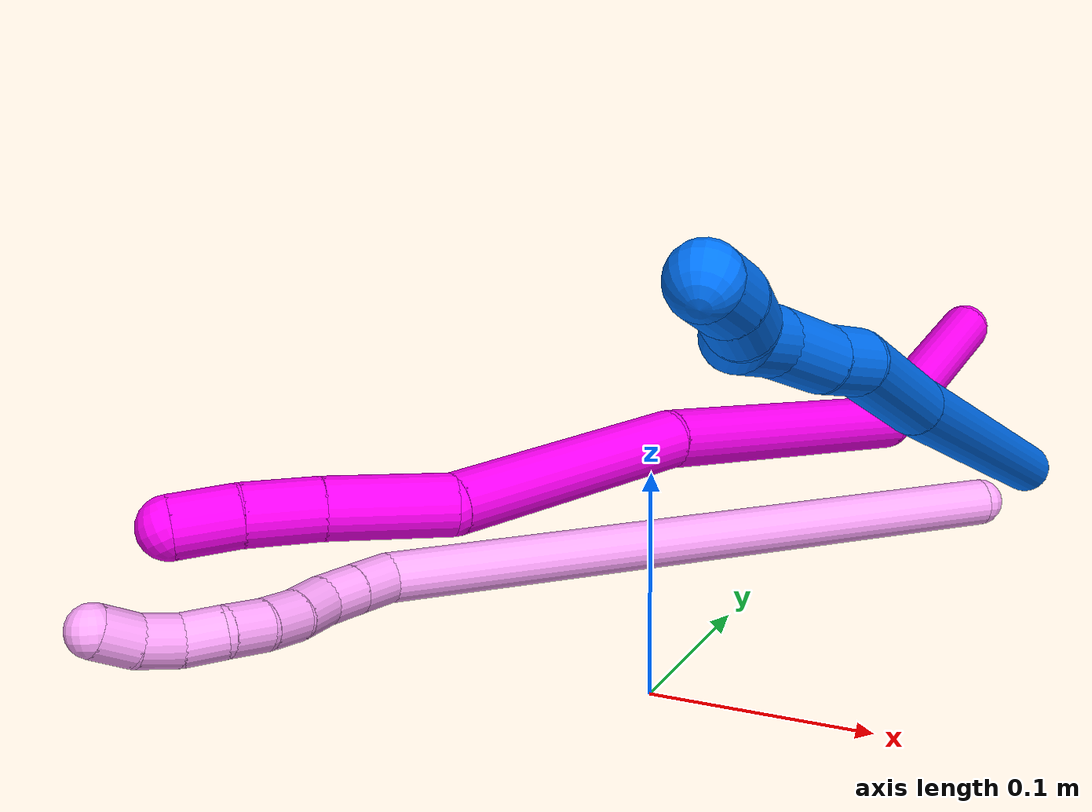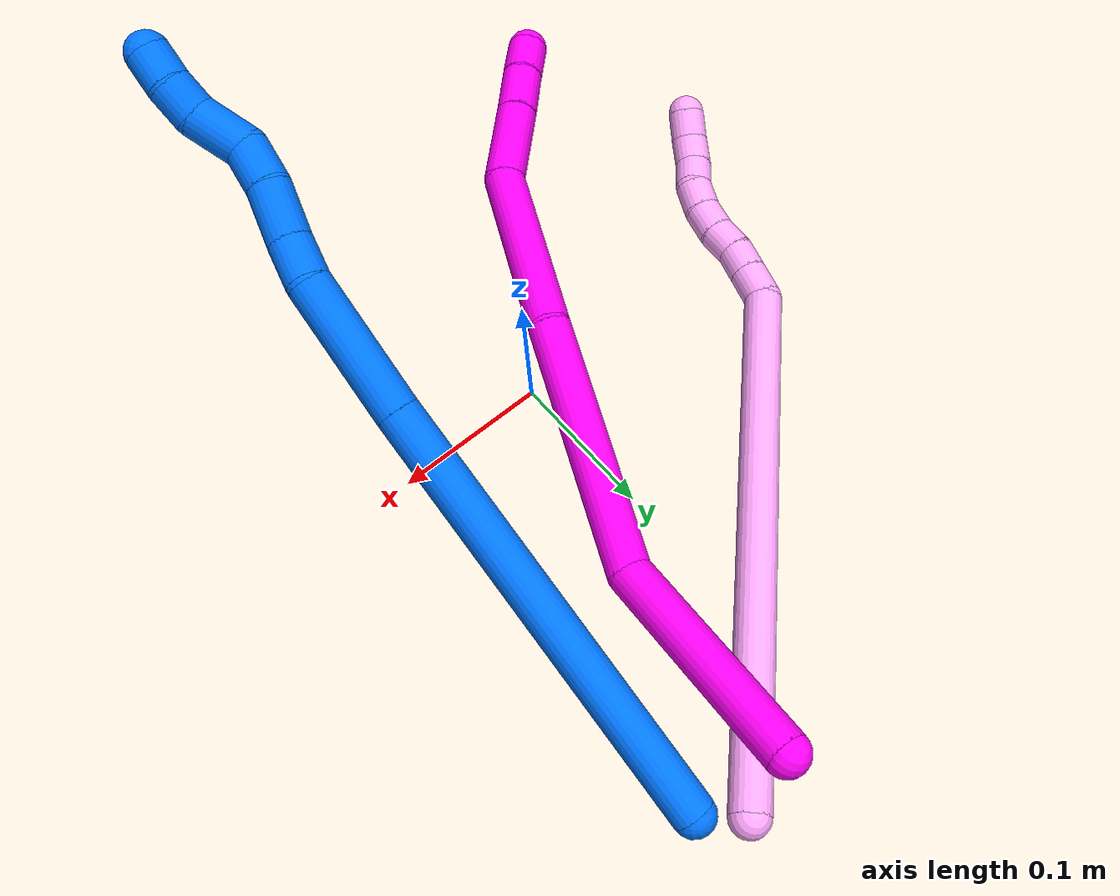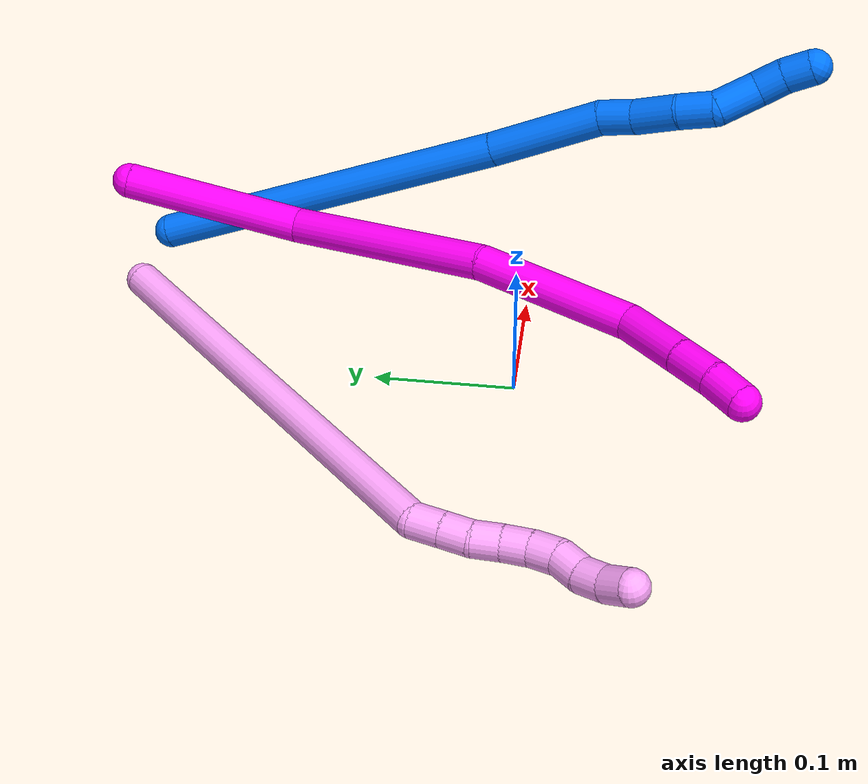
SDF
<sdf version="1.7">
 <world name="default">
  <model name="4">
   <static>0</static>
   <link name="4">
    <collision name="collision-cylinder-e_1_1_4">
     <pose>-0.164615 0.036227 0.005181 -1.42875 -1.35204 1.21547</pose>
     <geometry><cylinder><radius>0.0125</radius><length>0.337268</length></cylinder></geometry>
     <surface>
      <friction><ode><mu>1.16</mu><mu2>1.16</mu2><slip1>0</slip1><slip2>0</slip2></ode></friction>
      <contact><ode><kp>1e+06</kp><kd>1</kd><max_vel>0</max_vel><min_depth>0.001</min_depth></ode></contact>
     </surface>
    </collision>
    <visual name="visual-cylinder-e_1_1_4">
     <pose>-0.164615 0.036227 0.005181 -1.42875 -1.35204 1.21547</pose>
     <geometry><cylinder><radius>0.0125</radius><length>0.337268</length></cylinder></geometry>
     <material><ambient>1 0.65098 0.996078 1</ambient></material>
    </visual>
    <collision name="collision-cylinder-e_2_4_5">
     <pose>-0.337696 0.079528 0.011798 -1.37055 -0.864751 0.721465</pose>
     <geometry><cylinder><radius>0.0125</radius><length>0.022249</length></cylinder></geometry>
     <surface>
      <friction><ode><mu>1.16</mu><mu2>1.16</mu2><slip1>0</slip1><slip2>0</slip2></ode></friction>
      <contact><ode><kp>1e+06</kp><kd>1</kd><max_vel>0</max_vel><min_depth>0.001</min_depth></ode></contact>
     </surface>
    </collision>
    <visual name="visual-cylinder-e_2_4_5">
     <pose>-0.337696 0.079528 0.011798 -1.37055 -0.864751 0.721465</pose>
     <geometry><cylinder><radius>0.0125</radius><length>0.022249</length></cylinder></geometry>
     <material><ambient>1 0.65098 0.996078 1</ambient></material>
    </visual>
    <collision name="collision-cylinder-e_3_5_6">
     <pose>-0.353799 0.092929 0.01462 -1.35507 -0.867427 0.713376</pose>
     <geometry><cylinder><radius>0.0125</radius><length>0.02003</length></cylinder></geometry>
     <surface>
      <friction><ode><mu>1.16</mu><mu2>1.16</mu2><slip1>0</slip1><slip2>0</slip2></ode></friction>
      <contact><ode><kp>1e+06</kp><kd>1</kd><max_vel>0</max_vel><min_depth>0.001</min_depth></ode></contact>
     </surface>
    </collision>
    <visual name="visual-cylinder-e_3_5_6">
     <pose>-0.353799 0.092929 0.01462 -1.35507 -0.867427 0.713376</pose>
     <geometry><cylinder><radius>0.0125</radius><length>0.02003</length></cylinder></geometry>
     <material><ambient>1 0.65098 0.996078 1</ambient></material>
    </visual>
    <collision name="collision-cylinder-e_4_6_7">
     <pose>-0.367468 0.107284 0.01772 -1.36048 -0.633695 0.518623</pose>
     <geometry><cylinder><radius>0.0125</radius><length>0.020371</length></cylinder></geometry>
     <surface>
      <friction><ode><mu>1.16</mu><mu2>1.16</mu2><slip1>0</slip1><slip2>0</slip2></ode></friction>
      <contact><ode><kp>1e+06</kp><kd>1</kd><max_vel>0</max_vel><min_depth>0.001</min_depth></ode></contact>
     </surface>
    </collision>
    <visual name="visual-cylinder-e_4_6_7">
     <pose>-0.367468 0.107284 0.01772 -1.36048 -0.633695 0.518623</pose>
     <geometry><cylinder><radius>0.0125</radius><length>0.020371</length></cylinder></geometry>
     <material><ambient>1 0.65098 0.996078 1</ambient></material>
    </visual>
    <collision name="collision-cylinder-e_5_7_8">
     <pose>-0.380568 0.122365 0.020113 -1.47475 -0.7841 0.718478</pose>
     <geometry><cylinder><radius>0.0125</radius><length>0.020018</length></cylinder></geometry>
     <surface>
      <friction><ode><mu>1.16</mu><mu2>1.16</mu2><slip1>0</slip1><slip2>0</slip2></ode></friction>
      <contact><ode><kp>1e+06</kp><kd>1</kd><max_vel>0</max_vel><min_depth>0.001</min_depth></ode></contact>
     </surface>
    </collision>
    <visual name="visual-cylinder-e_5_7_8">
     <pose>-0.380568 0.122365 0.020113 -1.47475 -0.7841 0.718478</pose>
     <geometry><cylinder><radius>0.0125</radius><length>0.020018</length></cylinder></geometry>
     <material><ambient>1 0.65098 0.996078 1</ambient></material>
    </visual>
    <collision name="collision-cylinder-e_6_8_9">
     <pose>-0.395933 0.135053 0.020836 -1.56324 -0.974277 0.968037</pose>
     <geometry><cylinder><radius>0.0125</radius><length>0.020059</length></cylinder></geometry>
     <surface>
      <friction><ode><mu>1.16</mu><mu2>1.16</mu2><slip1>0</slip1><slip2>0</slip2></ode></friction>
      <contact><ode><kp>1e+06</kp><kd>1</kd><max_vel>0</max_vel><min_depth>0.001</min_depth></ode></contact>
     </surface>
    </collision>
    <visual name="visual-cylinder-e_6_8_9">
     <pose>-0.395933 0.135053 0.020836 -1.56324 -0.974277 0.968037</pose>
     <geometry><cylinder><radius>0.0125</radius><length>0.020059</length></cylinder></geometry>
     <material><ambient>1 0.65098 0.996078 1</ambient></material>
    </visual>
    <collision name="collision-cylinder-e_7_9_10">
     <pose>-0.413845 0.143314 0.021698 -1.26834 -1.29202 1.01263</pose>
     <geometry><cylinder><radius>0.0125</radius><length>0.020002</length></cylinder></geometry>
     <surface>
      <friction><ode><mu>1.16</mu><mu2>1.16</mu2><slip1>0</slip1><slip2>0</slip2></ode></friction>
      <contact><ode><kp>1e+06</kp><kd>1</kd><max_vel>0</max_vel><min_depth>0.001</min_depth></ode></contact>
     </surface>
    </collision>
    <visual name="visual-cylinder-e_7_9_10">
     <pose>-0.413845 0.143314 0.021698 -1.26834 -1.29202 1.01263</pose>
     <geometry><cylinder><radius>0.0125</radius><length>0.020002</length></cylinder></geometry>
     <material><ambient>1 0.65098 0.996078 1</ambient></material>
    </visual>
    <collision name="collision-cylinder-e_8_10_11">
     <pose>-0.432331 0.150361 0.021181 -1.86447 -1.09084 1.37061</pose>
     <geometry><cylinder><radius>0.0125</radius><length>0.020001</length></cylinder></geometry>
     <surface>
      <friction><ode><mu>1.16</mu><mu2>1.16</mu2><slip1>0</slip1><slip2>0</slip2></ode></friction>
      <contact><ode><kp>1e+06</kp><kd>1</kd><max_vel>0</max_vel><min_depth>0.001</min_depth></ode></contact>
     </surface>
    </collision>
    <visual name="visual-cylinder-e_8_10_11">
     <pose>-0.432331 0.150361 0.021181 -1.86447 -1.09084 1.37061</pose>
     <geometry><cylinder><radius>0.0125</radius><length>0.020001</length></cylinder></geometry>
     <material><ambient>1 0.65098 0.996078 1</ambient></material>
    </visual>
    <collision name="collision-cylinder-e_9_11_2">
     <pose>-0.449337 0.159384 0.016287 -2.22875 -0.95008 1.61719</pose>
     <geometry><cylinder><radius>0.0125</radius><length>0.020002</length></cylinder></geometry>
     <surface>
      <friction><ode><mu>1.16</mu><mu2>1.16</mu2><slip1>0</slip1><slip2>0</slip2></ode></friction>
      <contact><ode><kp>1e+06</kp><kd>1</kd><max_vel>0</max_vel><min_depth>0.001</min_depth></ode></contact>
     </surface>
    </collision>
    <visual name="visual-cylinder-e_9_11_2">
     <pose>-0.449337 0.159384 0.016287 -2.22875 -0.95008 1.61719</pose>
     <geometry><cylinder><radius>0.0125</radius><length>0.020002</length></cylinder></geometry>
     <material><ambient>1 0.65098 0.996078 1</ambient></material>
    </visual>
    <collision name="collision-sphere-2">
     <pose>-0.457472 0.163986 0.012731 0 -0 0</pose>
     <geometry><sphere><radius>0.0125</radius></sphere></geometry>
     <surface>
      <friction><ode><mu>1.16</mu><mu2>1.16</mu2><slip1>0</slip1><slip2>0</slip2></ode></friction>
      <contact><ode><kp>1e+06</kp><kd>1</kd><max_vel>0</max_vel><min_depth>0.001</min_depth></ode></contact>
     </surface>
    </collision>
    <visual name="visual-sphere-2">
     <pose>-0.457472 0.163986 0.012731 0 -0 0</pose>
     <geometry><sphere><radius>0.0125</radius></sphere></geometry>
     <material><ambient>1 0.65098 0.996078 1</ambient></material>
    </visual>
    <collision name="collision-sphere-11">
     <pose>-0.441201 0.154781 0.019844 0 -0 0</pose>
     <geometry><sphere><radius>0.0125</radius></sphere></geometry>
     <surface>
      <friction><ode><mu>1.16</mu><mu2>1.16</mu2><slip1>0</slip1><slip2>0</slip2></ode></friction>
      <contact><ode><kp>1e+06</kp><kd>1</kd><max_vel>0</max_vel><min_depth>0.001</min_depth></ode></contact>
     </surface>
    </collision>
    <visual name="visual-sphere-11">
     <pose>-0.441201 0.154781 0.019844 0 -0 0</pose>
     <geometry><sphere><radius>0.0125</radius></sphere></geometry>
     <material><ambient>1 0.65098 0.996078 1</ambient></material>
    </visual>
    <collision name="collision-sphere-10">
     <pose>-0.42346 0.145941 0.022518 0 -0 0</pose>
     <geometry><sphere><radius>0.0125</radius></sphere></geometry>
     <surface>
      <friction><ode><mu>1.16</mu><mu2>1.16</mu2><slip1>0</slip1><slip2>0</slip2></ode></friction>
      <contact><ode><kp>1e+06</kp><kd>1</kd><max_vel>0</max_vel><min_depth>0.001</min_depth></ode></contact>
     </surface>
    </collision>
    <visual name="visual-sphere-10">
     <pose>-0.42346 0.145941 0.022518 0 -0 0</pose>
     <geometry><sphere><radius>0.0125</radius></sphere></geometry>
     <material><ambient>1 0.65098 0.996078 1</ambient></material>
    </visual>
    <collision name="collision-sphere-9">
     <pose>-0.404231 0.140687 0.020878 0 -0 0</pose>
     <geometry><sphere><radius>0.0125</radius></sphere></geometry>
     <surface>
      <friction><ode><mu>1.16</mu><mu2>1.16</mu2><slip1>0</slip1><slip2>0</slip2></ode></friction>
      <contact><ode><kp>1e+06</kp><kd>1</kd><max_vel>0</max_vel><min_depth>0.001</min_depth></ode></contact>
     </surface>
    </collision>
    <visual name="visual-sphere-9">
     <pose>-0.404231 0.140687 0.020878 0 -0 0</pose>
     <geometry><sphere><radius>0.0125</radius></sphere></geometry>
     <material><ambient>1 0.65098 0.996078 1</ambient></material>
    </visual>
    <collision name="collision-sphere-4">
     <pose>-0.329231 0.072454 0.010362 0 -0 0</pose>
     <geometry><sphere><radius>0.0125</radius></sphere></geometry>
     <surface>
      <friction><ode><mu>1.16</mu><mu2>1.16</mu2><slip1>0</slip1><slip2>0</slip2></ode></friction>
      <contact><ode><kp>1e+06</kp><kd>1</kd><max_vel>0</max_vel><min_depth>0.001</min_depth></ode></contact>
     </surface>
    </collision>
    <visual name="visual-sphere-4">
     <pose>-0.329231 0.072454 0.010362 0 -0 0</pose>
     <geometry><sphere><radius>0.0125</radius></sphere></geometry>
     <material><ambient>1 0.65098 0.996078 1</ambient></material>
    </visual>
    <collision name="collision-sphere-1">
     <geometry><sphere><radius>0.0125</radius></sphere></geometry>
     <surface>
      <friction><ode><mu>1.16</mu><mu2>1.16</mu2><slip1>0</slip1><slip2>0</slip2></ode></friction>
      <contact><ode><kp>1e+06</kp><kd>1</kd><max_vel>0</max_vel><min_depth>0.001</min_depth></ode></contact>
     </surface>
    </collision>
    <visual name="visual-sphere-1">
     <geometry><sphere><radius>0.0125</radius></sphere></geometry>
     <material><ambient>1 0.65098 0.996078 1</ambient></material>
    </visual>
    <collision name="collision-sphere-8">
     <pose>-0.387636 0.129419 0.020793 0 -0 0</pose>
     <geometry><sphere><radius>0.0125</radius></sphere></geometry>
     <surface>
      <friction><ode><mu>1.16</mu><mu2>1.16</mu2><slip1>0</slip1><slip2>0</slip2></ode></friction>
      <contact><ode><kp>1e+06</kp><kd>1</kd><max_vel>0</max_vel><min_depth>0.001</min_depth></ode></contact>
     </surface>
    </collision>
    <visual name="visual-sphere-8">
     <pose>-0.387636 0.129419 0.020793 0 -0 0</pose>
     <geometry><sphere><radius>0.0125</radius></sphere></geometry>
     <material><ambient>1 0.65098 0.996078 1</ambient></material>
    </visual>
    <collision name="collision-sphere-5">
     <pose>-0.346161 0.086602 0.013233 0 -0 0</pose>
     <geometry><sphere><radius>0.0125</radius></sphere></geometry>
     <surface>
      <friction><ode><mu>1.16</mu><mu2>1.16</mu2><slip1>0</slip1><slip2>0</slip2></ode></friction>
      <contact><ode><kp>1e+06</kp><kd>1</kd><max_vel>0</max_vel><min_depth>0.001</min_depth></ode></contact>
     </surface>
    </collision>
    <visual name="visual-sphere-5">
     <pose>-0.346161 0.086602 0.013233 0 -0 0</pose>
     <geometry><sphere><radius>0.0125</radius></sphere></geometry>
     <material><ambient>1 0.65098 0.996078 1</ambient></material>
    </visual>
    <collision name="collision-sphere-6">
     <pose>-0.361437 0.099257 0.016007 0 -0 0</pose>
     <geometry><sphere><radius>0.0125</radius></sphere></geometry>
     <surface>
      <friction><ode><mu>1.16</mu><mu2>1.16</mu2><slip1>0</slip1><slip2>0</slip2></ode></friction>
      <contact><ode><kp>1e+06</kp><kd>1</kd><max_vel>0</max_vel><min_depth>0.001</min_depth></ode></contact>
     </surface>
    </collision>
    <visual name="visual-sphere-6">
     <pose>-0.361437 0.099257 0.016007 0 -0 0</pose>
     <geometry><sphere><radius>0.0125</radius></sphere></geometry>
     <material><ambient>1 0.65098 0.996078 1</ambient></material>
    </visual>
    <collision name="collision-sphere-7">
     <pose>-0.373499 0.115311 0.019434 0 -0 0</pose>
     <geometry><sphere><radius>0.0125</radius></sphere></geometry>
     <surface>
      <friction><ode><mu>1.16</mu><mu2>1.16</mu2><slip1>0</slip1><slip2>0</slip2></ode></friction>
      <contact><ode><kp>1e+06</kp><kd>1</kd><max_vel>0</max_vel><min_depth>0.001</min_depth></ode></contact>
     </surface>
    </collision>
    <visual name="visual-sphere-7">
     <pose>-0.373499 0.115311 0.019434 0 -0 0</pose>
     <geometry><sphere><radius>0.0125</radius></sphere></geometry>
     <material><ambient>1 0.65098 0.996078 1</ambient></material>
    </visual>
    <inertial>
     <pose>-0.238155 0.06451 0.009335 0 -0 0</pose>
     <mass>0.5</mass>
     <inertia>
      <ixx>0.000869</ixx>
      <ixy>0</ixy>
      <ixz>0</ixz>
      <iyy>0.003746</iyy>
      <iyz>0</iyz>
      <izz>0.002448</izz>
     </inertia>
    </inertial>
   </link>
   <pose>0.0802 0.287675 0.012016 2.9158 -0.017302 0.561865</pose>
  </model>
  <model name="10">
   <static>0</static>
   <link name="10">
    <collision name="collision-cylinder-e_1_1_4">
     <pose>-0.043537 -0.044954 0.008949 1.3743 -0.759676 -0.633137</pose>
     <geometry><cylinder><radius>0.0125</radius><length>0.126434</length></cylinder></geometry>
     <surface>
      <friction><ode><mu>1.16</mu><mu2>1.16</mu2><slip1>0</slip1><slip2>0</slip2></ode></friction>
      <contact><ode><kp>1e+06</kp><kd>1</kd><max_vel>0</max_vel><min_depth>0.001</min_depth></ode></contact>
     </surface>
    </collision>
    <visual name="visual-cylinder-e_1_1_4">
     <pose>-0.043537 -0.044954 0.008949 1.3743 -0.759676 -0.633137</pose>
     <geometry><cylinder><radius>0.0125</radius><length>0.126434</length></cylinder></geometry>
     <material><ambient>1 0 0.964706 1</ambient></material>
    </visual>
    <collision name="collision-cylinder-e_2_4_5">
     <pose>-0.129134 -0.148914 -0.003472 1.91827 -0.590457 -0.818242</pose>
     <geometry><cylinder><radius>0.0125</radius><length>0.151095</length></cylinder></geometry>
     <surface>
      <friction><ode><mu>1.16</mu><mu2>1.16</mu2><slip1>0</slip1><slip2>0</slip2></ode></friction>
      <contact><ode><kp>1e+06</kp><kd>1</kd><max_vel>0</max_vel><min_depth>0.001</min_depth></ode></contact>
     </surface>
    </collision>
    <visual name="visual-cylinder-e_2_4_5">
     <pose>-0.129134 -0.148914 -0.003472 1.91827 -0.590457 -0.818242</pose>
     <geometry><cylinder><radius>0.0125</radius><length>0.151095</length></cylinder></geometry>
     <material><ambient>1 0 0.964706 1</ambient></material>
    </visual>
    <collision name="collision-cylinder-e_3_5_6">
     <pose>-0.198536 -0.25758 -0.032932 1.73229 -0.497767 -0.580909</pose>
     <geometry><cylinder><radius>0.0125</radius><length>0.114527</length></cylinder></geometry>
     <surface>
      <friction><ode><mu>1.16</mu><mu2>1.16</mu2><slip1>0</slip1><slip2>0</slip2></ode></friction>
      <contact><ode><kp>1e+06</kp><kd>1</kd><max_vel>0</max_vel><min_depth>0.001</min_depth></ode></contact>
     </surface>
    </collision>
    <visual name="visual-cylinder-e_3_5_6">
     <pose>-0.198536 -0.25758 -0.032932 1.73229 -0.497767 -0.580909</pose>
     <geometry><cylinder><radius>0.0125</radius><length>0.114527</length></cylinder></geometry>
     <material><ambient>1 0 0.964706 1</ambient></material>
    </visual>
    <collision name="collision-cylinder-e_4_6_7">
     <pose>-0.230172 -0.33034 -0.051033 1.97974 -0.168948 -0.256546</pose>
     <geometry><cylinder><radius>0.0125</radius><length>0.051081</length></cylinder></geometry>
     <surface>
      <friction><ode><mu>1.16</mu><mu2>1.16</mu2><slip1>0</slip1><slip2>0</slip2></ode></friction>
      <contact><ode><kp>1e+06</kp><kd>1</kd><max_vel>0</max_vel><min_depth>0.001</min_depth></ode></contact>
     </surface>
    </collision>
    <visual name="visual-cylinder-e_4_6_7">
     <pose>-0.230172 -0.33034 -0.051033 1.97974 -0.168948 -0.256546</pose>
     <geometry><cylinder><radius>0.0125</radius><length>0.051081</length></cylinder></geometry>
     <material><ambient>1 0 0.964706 1</ambient></material>
    </visual>
    <collision name="collision-cylinder-e_5_7_8">
     <pose>-0.237317 -0.367562 -0.066307 1.9275 -0.186985 -0.268389</pose>
     <geometry><cylinder><radius>0.0125</radius><length>0.030674</length></cylinder></geometry>
     <surface>
      <friction><ode><mu>1.16</mu><mu2>1.16</mu2><slip1>0</slip1><slip2>0</slip2></ode></friction>
      <contact><ode><kp>1e+06</kp><kd>1</kd><max_vel>0</max_vel><min_depth>0.001</min_depth></ode></contact>
     </surface>
    </collision>
    <visual name="visual-cylinder-e_5_7_8">
     <pose>-0.237317 -0.367562 -0.066307 1.9275 -0.186985 -0.268389</pose>
     <geometry><cylinder><radius>0.0125</radius><length>0.030674</length></cylinder></geometry>
     <material><ambient>1 0 0.964706 1</ambient></material>
    </visual>
    <collision name="collision-cylinder-e_6_8_2">
     <pose>-0.242092 -0.394173 -0.074999 1.83884 -0.147476 -0.193191</pose>
     <geometry><cylinder><radius>0.0125</radius><length>0.026189</length></cylinder></geometry>
     <surface>
      <friction><ode><mu>1.16</mu><mu2>1.16</mu2><slip1>0</slip1><slip2>0</slip2></ode></friction>
      <contact><ode><kp>1e+06</kp><kd>1</kd><max_vel>0</max_vel><min_depth>0.001</min_depth></ode></contact>
     </surface>
    </collision>
    <visual name="visual-cylinder-e_6_8_2">
     <pose>-0.242092 -0.394173 -0.074999 1.83884 -0.147476 -0.193191</pose>
     <geometry><cylinder><radius>0.0125</radius><length>0.026189</length></cylinder></geometry>
     <material><ambient>1 0 0.964706 1</ambient></material>
    </visual>
    <collision name="collision-sphere-2">
     <pose>-0.244017 -0.406663 -0.078429 0 -0 0</pose>
     <geometry><sphere><radius>0.0125</radius></sphere></geometry>
     <surface>
      <friction><ode><mu>1.16</mu><mu2>1.16</mu2><slip1>0</slip1><slip2>0</slip2></ode></friction>
      <contact><ode><kp>1e+06</kp><kd>1</kd><max_vel>0</max_vel><min_depth>0.001</min_depth></ode></contact>
     </surface>
    </collision>
    <visual name="visual-sphere-2">
     <pose>-0.244017 -0.406663 -0.078429 0 -0 0</pose>
     <geometry><sphere><radius>0.0125</radius></sphere></geometry>
     <material><ambient>1 0 0.964706 1</ambient></material>
    </visual>
    <collision name="collision-sphere-4">
     <pose>-0.087073 -0.089908 0.017898 0 -0 0</pose>
     <geometry><sphere><radius>0.0125</radius></sphere></geometry>
     <surface>
      <friction><ode><mu>1.16</mu><mu2>1.16</mu2><slip1>0</slip1><slip2>0</slip2></ode></friction>
      <contact><ode><kp>1e+06</kp><kd>1</kd><max_vel>0</max_vel><min_depth>0.001</min_depth></ode></contact>
     </surface>
    </collision>
    <visual name="visual-sphere-4">
     <pose>-0.087073 -0.089908 0.017898 0 -0 0</pose>
     <geometry><sphere><radius>0.0125</radius></sphere></geometry>
     <material><ambient>1 0 0.964706 1</ambient></material>
    </visual>
    <collision name="collision-sphere-1">
     <geometry><sphere><radius>0.0125</radius></sphere></geometry>
     <surface>
      <friction><ode><mu>1.16</mu><mu2>1.16</mu2><slip1>0</slip1><slip2>0</slip2></ode></friction>
      <contact><ode><kp>1e+06</kp><kd>1</kd><max_vel>0</max_vel><min_depth>0.001</min_depth></ode></contact>
     </surface>
    </collision>
    <visual name="visual-sphere-1">
     <geometry><sphere><radius>0.0125</radius></sphere></geometry>
     <material><ambient>1 0 0.964706 1</ambient></material>
    </visual>
    <collision name="collision-sphere-8">
     <pose>-0.240168 -0.381683 -0.071569 0 -0 0</pose>
     <geometry><sphere><radius>0.0125</radius></sphere></geometry>
     <surface>
      <friction><ode><mu>1.16</mu><mu2>1.16</mu2><slip1>0</slip1><slip2>0</slip2></ode></friction>
      <contact><ode><kp>1e+06</kp><kd>1</kd><max_vel>0</max_vel><min_depth>0.001</min_depth></ode></contact>
     </surface>
    </collision>
    <visual name="visual-sphere-8">
     <pose>-0.240168 -0.381683 -0.071569 0 -0 0</pose>
     <geometry><sphere><radius>0.0125</radius></sphere></geometry>
     <material><ambient>1 0 0.964706 1</ambient></material>
    </visual>
    <collision name="collision-sphere-5">
     <pose>-0.171194 -0.20792 -0.024842 0 -0 0</pose>
     <geometry><sphere><radius>0.0125</radius></sphere></geometry>
     <surface>
      <friction><ode><mu>1.16</mu><mu2>1.16</mu2><slip1>0</slip1><slip2>0</slip2></ode></friction>
      <contact><ode><kp>1e+06</kp><kd>1</kd><max_vel>0</max_vel><min_depth>0.001</min_depth></ode></contact>
     </surface>
    </collision>
    <visual name="visual-sphere-5">
     <pose>-0.171194 -0.20792 -0.024842 0 -0 0</pose>
     <geometry><sphere><radius>0.0125</radius></sphere></geometry>
     <material><ambient>1 0 0.964706 1</ambient></material>
    </visual>
    <collision name="collision-sphere-6">
     <pose>-0.225877 -0.30724 -0.041022 0 -0 0</pose>
     <geometry><sphere><radius>0.0125</radius></sphere></geometry>
     <surface>
      <friction><ode><mu>1.16</mu><mu2>1.16</mu2><slip1>0</slip1><slip2>0</slip2></ode></friction>
      <contact><ode><kp>1e+06</kp><kd>1</kd><max_vel>0</max_vel><min_depth>0.001</min_depth></ode></contact>
     </surface>
    </collision>
    <visual name="visual-sphere-6">
     <pose>-0.225877 -0.30724 -0.041022 0 -0 0</pose>
     <geometry><sphere><radius>0.0125</radius></sphere></geometry>
     <material><ambient>1 0 0.964706 1</ambient></material>
    </visual>
    <collision name="collision-sphere-7">
     <pose>-0.234466 -0.353441 -0.061044 0 -0 0</pose>
     <geometry><sphere><radius>0.0125</radius></sphere></geometry>
     <surface>
      <friction><ode><mu>1.16</mu><mu2>1.16</mu2><slip1>0</slip1><slip2>0</slip2></ode></friction>
      <contact><ode><kp>1e+06</kp><kd>1</kd><max_vel>0</max_vel><min_depth>0.001</min_depth></ode></contact>
     </surface>
    </collision>
    <visual name="visual-sphere-7">
     <pose>-0.234466 -0.353441 -0.061044 0 -0 0</pose>
     <geometry><sphere><radius>0.0125</radius></sphere></geometry>
     <material><ambient>1 0 0.964706 1</ambient></material>
    </visual>
    <inertial>
     <pose>-0.146261 -0.192311 -0.019539 0 -0 0</pose>
     <mass>0.5</mass>
     <inertia>
      <ixx>4.3e-05</ixx>
      <ixy>0</ixy>
      <ixz>0</ixz>
      <iyy>-0.000201</iyy>
      <iyz>0</iyz>
      <izz>0.000824</izz>
     </inertia>
    </inertial>
   </link>
   <pose>0.066436 0.285576 0.109776 2.75957 0.30064 2.16114</pose>
  </model>
  <model name="14">
   <static>0</static>
   <link name="14">
    <collision name="collision-cylinder-e_1_1_4">
     <pose>0.082256 -0.06326 -0.078888 2.4657 0.682887 1.58192</pose>
     <geometry><cylinder><radius>0.0125</radius><length>0.260701</length></cylinder></geometry>
     <surface>
      <friction><ode><mu>1.16</mu><mu2>1.16</mu2><slip1>0</slip1><slip2>0</slip2></ode></friction>
      <contact><ode><kp>1e+06</kp><kd>1</kd><max_vel>0</max_vel><min_depth>0.001</min_depth></ode></contact>
     </surface>
    </collision>
    <visual name="visual-cylinder-e_1_1_4">
     <pose>0.082256 -0.06326 -0.078888 2.4657 0.682887 1.58192</pose>
     <geometry><cylinder><radius>0.0125</radius><length>0.260701</length></cylinder></geometry>
     <material><ambient>0 0.462745 1 1</ambient></material>
    </visual>
    <collision name="collision-cylinder-e_2_4_5">
     <pose>0.191509 -0.14784 -0.181025 2.39944 0.707893 1.51915</pose>
     <geometry><cylinder><radius>0.0125</radius><length>0.08304</length></cylinder></geometry>
     <surface>
      <friction><ode><mu>1.16</mu><mu2>1.16</mu2><slip1>0</slip1><slip2>0</slip2></ode></friction>
      <contact><ode><kp>1e+06</kp><kd>1</kd><max_vel>0</max_vel><min_depth>0.001</min_depth></ode></contact>
     </surface>
    </collision>
    <visual name="visual-cylinder-e_2_4_5">
     <pose>0.191509 -0.14784 -0.181025 2.39944 0.707893 1.51915</pose>
     <geometry><cylinder><radius>0.0125</radius><length>0.08304</length></cylinder></geometry>
     <material><ambient>0 0.462745 1 1</ambient></material>
    </visual>
    <collision name="collision-cylinder-e_3_5_6">
     <pose>0.223966 -0.177262 -0.212378 2.35638 0.444596 0.999285</pose>
     <geometry><cylinder><radius>0.0125</radius><length>0.025387</length></cylinder></geometry>
     <surface>
      <friction><ode><mu>1.16</mu><mu2>1.16</mu2><slip1>0</slip1><slip2>0</slip2></ode></friction>
      <contact><ode><kp>1e+06</kp><kd>1</kd><max_vel>0</max_vel><min_depth>0.001</min_depth></ode></contact>
     </surface>
    </collision>
    <visual name="visual-cylinder-e_3_5_6">
     <pose>0.223966 -0.177262 -0.212378 2.35638 0.444596 0.999285</pose>
     <geometry><cylinder><radius>0.0125</radius><length>0.025387</length></cylinder></geometry>
     <material><ambient>0 0.462745 1 1</ambient></material>
    </visual>
    <collision name="collision-cylinder-e_4_6_7">
     <pose>0.237588 -0.196772 -0.229114 2.2185 0.518532 0.979815</pose>
     <geometry><cylinder><radius>0.0125</radius><length>0.032942</length></cylinder></geometry>
     <surface>
      <friction><ode><mu>1.16</mu><mu2>1.16</mu2><slip1>0</slip1><slip2>0</slip2></ode></friction>
      <contact><ode><kp>1e+06</kp><kd>1</kd><max_vel>0</max_vel><min_depth>0.001</min_depth></ode></contact>
     </surface>
    </collision>
    <visual name="visual-cylinder-e_4_6_7">
     <pose>0.237588 -0.196772 -0.229114 2.2185 0.518532 0.979815</pose>
     <geometry><cylinder><radius>0.0125</radius><length>0.032942</length></cylinder></geometry>
     <material><ambient>0 0.462745 1 1</ambient></material>
    </visual>
    <collision name="collision-cylinder-e_5_7_8">
     <pose>0.252035 -0.215425 -0.246244 2.43573 0.512496 1.23653</pose>
     <geometry><cylinder><radius>0.0125</radius><length>0.025627</length></cylinder></geometry>
     <surface>
      <friction><ode><mu>1.16</mu><mu2>1.16</mu2><slip1>0</slip1><slip2>0</slip2></ode></friction>
      <contact><ode><kp>1e+06</kp><kd>1</kd><max_vel>0</max_vel><min_depth>0.001</min_depth></ode></contact>
     </surface>
    </collision>
    <visual name="visual-cylinder-e_5_7_8">
     <pose>0.252035 -0.215425 -0.246244 2.43573 0.512496 1.23653</pose>
     <geometry><cylinder><radius>0.0125</radius><length>0.025627</length></cylinder></geometry>
     <material><ambient>0 0.462745 1 1</ambient></material>
    </visual>
    <collision name="collision-cylinder-e_6_8_9">
     <pose>0.270351 -0.224766 -0.264499 2.92983 0.878487 2.6967</pose>
     <geometry><cylinder><radius>0.0125</radius><length>0.031265</length></cylinder></geometry>
     <surface>
      <friction><ode><mu>1.16</mu><mu2>1.16</mu2><slip1>0</slip1><slip2>0</slip2></ode></friction>
      <contact><ode><kp>1e+06</kp><kd>1</kd><max_vel>0</max_vel><min_depth>0.001</min_depth></ode></contact>
     </surface>
    </collision>
    <visual name="visual-cylinder-e_6_8_9">
     <pose>0.270351 -0.224766 -0.264499 2.92983 0.878487 2.6967</pose>
     <geometry><cylinder><radius>0.0125</radius><length>0.031265</length></cylinder></geometry>
     <material><ambient>0 0.462745 1 1</ambient></material>
    </visual>
    <collision name="collision-cylinder-e_7_9_10">
     <pose>0.290454 -0.230991 -0.279277 2.45359 0.892638 1.85632</pose>
     <geometry><cylinder><radius>0.0125</radius><length>0.020725</length></cylinder></geometry>
     <surface>
      <friction><ode><mu>1.16</mu><mu2>1.16</mu2><slip1>0</slip1><slip2>0</slip2></ode></friction>
      <contact><ode><kp>1e+06</kp><kd>1</kd><max_vel>0</max_vel><min_depth>0.001</min_depth></ode></contact>
     </surface>
    </collision>
    <visual name="visual-cylinder-e_7_9_10">
     <pose>0.290454 -0.230991 -0.279277 2.45359 0.892638 1.85632</pose>
     <geometry><cylinder><radius>0.0125</radius><length>0.020725</length></cylinder></geometry>
     <material><ambient>0 0.462745 1 1</ambient></material>
    </visual>
    <collision name="collision-cylinder-e_8_10_2">
     <pose>0.305197 -0.240376 -0.289866 2.38486 0.716876 1.5115</pose>
     <geometry><cylinder><radius>0.0125</radius><length>0.020314</length></cylinder></geometry>
     <surface>
      <friction><ode><mu>1.16</mu><mu2>1.16</mu2><slip1>0</slip1><slip2>0</slip2></ode></friction>
      <contact><ode><kp>1e+06</kp><kd>1</kd><max_vel>0</max_vel><min_depth>0.001</min_depth></ode></contact>
     </surface>
    </collision>
    <visual name="visual-cylinder-e_8_10_2">
     <pose>0.305197 -0.240376 -0.289866 2.38486 0.716876 1.5115</pose>
     <geometry><cylinder><radius>0.0125</radius><length>0.020314</length></cylinder></geometry>
     <material><ambient>0 0.462745 1 1</ambient></material>
    </visual>
    <collision name="collision-sphere-2">
     <pose>0.311871 -0.245633 -0.295433 0 -0 0</pose>
     <geometry><sphere><radius>0.0125</radius></sphere></geometry>
     <surface>
      <friction><ode><mu>1.16</mu><mu2>1.16</mu2><slip1>0</slip1><slip2>0</slip2></ode></friction>
      <contact><ode><kp>1e+06</kp><kd>1</kd><max_vel>0</max_vel><min_depth>0.001</min_depth></ode></contact>
     </surface>
    </collision>
    <visual name="visual-sphere-2">
     <pose>0.311871 -0.245633 -0.295433 0 -0 0</pose>
     <geometry><sphere><radius>0.0125</radius></sphere></geometry>
     <material><ambient>0 0.462745 1 1</ambient></material>
    </visual>
    <collision name="collision-sphere-10">
     <pose>0.298524 -0.235119 -0.284299 0 -0 0</pose>
     <geometry><sphere><radius>0.0125</radius></sphere></geometry>
     <surface>
      <friction><ode><mu>1.16</mu><mu2>1.16</mu2><slip1>0</slip1><slip2>0</slip2></ode></friction>
      <contact><ode><kp>1e+06</kp><kd>1</kd><max_vel>0</max_vel><min_depth>0.001</min_depth></ode></contact>
     </surface>
    </collision>
    <visual name="visual-sphere-10">
     <pose>0.298524 -0.235119 -0.284299 0 -0 0</pose>
     <geometry><sphere><radius>0.0125</radius></sphere></geometry>
     <material><ambient>0 0.462745 1 1</ambient></material>
    </visual>
    <collision name="collision-sphere-9">
     <pose>0.282385 -0.226863 -0.274255 0 -0 0</pose>
     <geometry><sphere><radius>0.0125</radius></sphere></geometry>
     <surface>
      <friction><ode><mu>1.16</mu><mu2>1.16</mu2><slip1>0</slip1><slip2>0</slip2></ode></friction>
      <contact><ode><kp>1e+06</kp><kd>1</kd><max_vel>0</max_vel><min_depth>0.001</min_depth></ode></contact>
     </surface>
    </collision>
    <visual name="visual-sphere-9">
     <pose>0.282385 -0.226863 -0.274255 0 -0 0</pose>
     <geometry><sphere><radius>0.0125</radius></sphere></geometry>
     <material><ambient>0 0.462745 1 1</ambient></material>
    </visual>
    <collision name="collision-sphere-4">
     <pose>0.164511 -0.126521 -0.157776 0 -0 0</pose>
     <geometry><sphere><radius>0.0125</radius></sphere></geometry>
     <surface>
      <friction><ode><mu>1.16</mu><mu2>1.16</mu2><slip1>0</slip1><slip2>0</slip2></ode></friction>
      <contact><ode><kp>1e+06</kp><kd>1</kd><max_vel>0</max_vel><min_depth>0.001</min_depth></ode></contact>
     </surface>
    </collision>
    <visual name="visual-sphere-4">
     <pose>0.164511 -0.126521 -0.157776 0 -0 0</pose>
     <geometry><sphere><radius>0.0125</radius></sphere></geometry>
     <material><ambient>0 0.462745 1 1</ambient></material>
    </visual>
    <collision name="collision-sphere-1">
     <geometry><sphere><radius>0.0125</radius></sphere></geometry>
     <surface>
      <friction><ode><mu>1.16</mu><mu2>1.16</mu2><slip1>0</slip1><slip2>0</slip2></ode></friction>
      <contact><ode><kp>1e+06</kp><kd>1</kd><max_vel>0</max_vel><min_depth>0.001</min_depth></ode></contact>
     </surface>
    </collision>
    <visual name="visual-sphere-1">
     <geometry><sphere><radius>0.0125</radius></sphere></geometry>
     <material><ambient>0 0.462745 1 1</ambient></material>
    </visual>
    <collision name="collision-sphere-8">
     <pose>0.258318 -0.222669 -0.254743 0 -0 0</pose>
     <geometry><sphere><radius>0.0125</radius></sphere></geometry>
     <surface>
      <friction><ode><mu>1.16</mu><mu2>1.16</mu2><slip1>0</slip1><slip2>0</slip2></ode></friction>
      <contact><ode><kp>1e+06</kp><kd>1</kd><max_vel>0</max_vel><min_depth>0.001</min_depth></ode></contact>
     </surface>
    </collision>
    <visual name="visual-sphere-8">
     <pose>0.258318 -0.222669 -0.254743 0 -0 0</pose>
     <geometry><sphere><radius>0.0125</radius></sphere></geometry>
     <material><ambient>0 0.462745 1 1</ambient></material>
    </visual>
    <collision name="collision-sphere-5">
     <pose>0.218506 -0.16916 -0.204273 0 -0 0</pose>
     <geometry><sphere><radius>0.0125</radius></sphere></geometry>
     <surface>
      <friction><ode><mu>1.16</mu><mu2>1.16</mu2><slip1>0</slip1><slip2>0</slip2></ode></friction>
      <contact><ode><kp>1e+06</kp><kd>1</kd><max_vel>0</max_vel><min_depth>0.001</min_depth></ode></contact>
     </surface>
    </collision>
    <visual name="visual-sphere-5">
     <pose>0.218506 -0.16916 -0.204273 0 -0 0</pose>
     <geometry><sphere><radius>0.0125</radius></sphere></geometry>
     <material><ambient>0 0.462745 1 1</ambient></material>
    </visual>
    <collision name="collision-sphere-6">
     <pose>0.229425 -0.185363 -0.220482 0 -0 0</pose>
     <geometry><sphere><radius>0.0125</radius></sphere></geometry>
     <surface>
      <friction><ode><mu>1.16</mu><mu2>1.16</mu2><slip1>0</slip1><slip2>0</slip2></ode></friction>
      <contact><ode><kp>1e+06</kp><kd>1</kd><max_vel>0</max_vel><min_depth>0.001</min_depth></ode></contact>
     </surface>
    </collision>
    <visual name="visual-sphere-6">
     <pose>0.229425 -0.185363 -0.220482 0 -0 0</pose>
     <geometry><sphere><radius>0.0125</radius></sphere></geometry>
     <material><ambient>0 0.462745 1 1</ambient></material>
    </visual>
    <collision name="collision-sphere-7">
     <pose>0.245752 -0.208181 -0.237746 0 -0 0</pose>
     <geometry><sphere><radius>0.0125</radius></sphere></geometry>
     <surface>
      <friction><ode><mu>1.16</mu><mu2>1.16</mu2><slip1>0</slip1><slip2>0</slip2></ode></friction>
      <contact><ode><kp>1e+06</kp><kd>1</kd><max_vel>0</max_vel><min_depth>0.001</min_depth></ode></contact>
     </surface>
    </collision>
    <visual name="visual-sphere-7">
     <pose>0.245752 -0.208181 -0.237746 0 -0 0</pose>
     <geometry><sphere><radius>0.0125</radius></sphere></geometry>
     <material><ambient>0 0.462745 1 1</ambient></material>
    </visual>
    <inertial>
     <pose>0.15598 -0.123938 -0.149588 0 -0 0</pose>
     <mass>0.5</mass>
     <inertia>
      <ixx>0.001217</ixx>
      <ixy>0</ixy>
      <ixz>0</ixz>
      <iyy>0.001808</iyy>
      <iyz>0</iyz>
      <izz>-0.000248</izz>
     </inertia>
    </inertial>
   </link>
   <pose>0.107089 0.270049 0.039954 -0.574509 -0.932124 -0.678288</pose>
  </model>
 </world>
</sdf>
